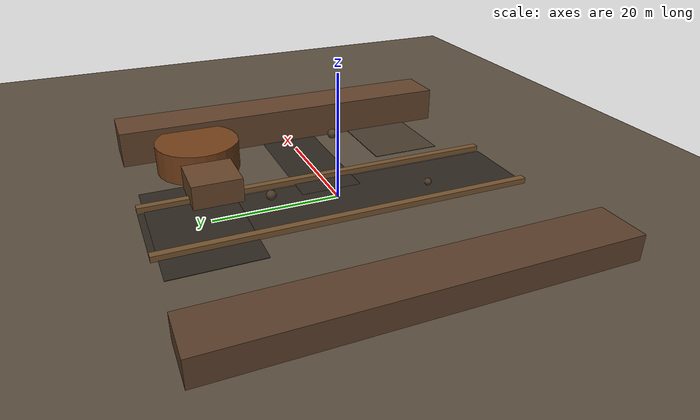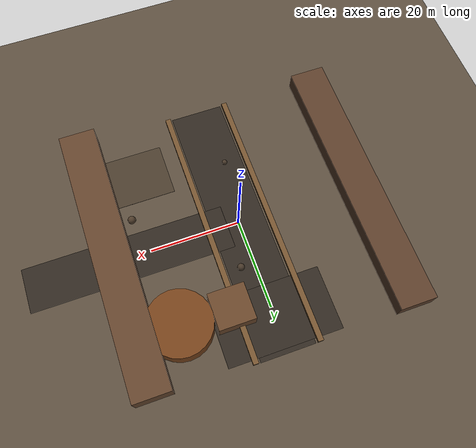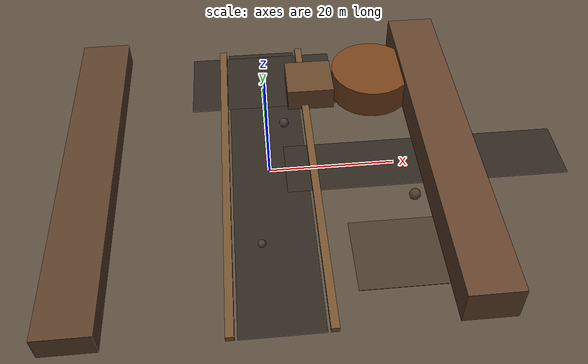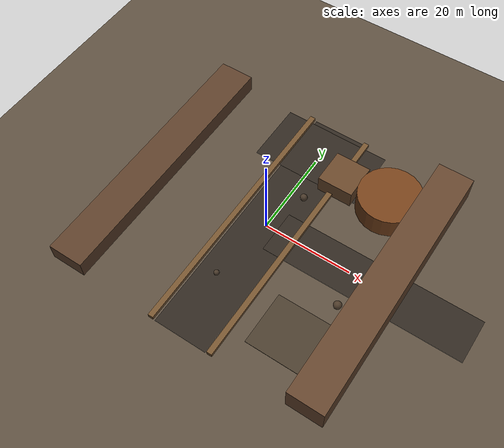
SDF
<?xml version="1.0"?>
<sdf version="1.8">
  <world name="mine_world">

    <!-- Core Gazebo systems -->
    <plugin filename="libignition-gazebo-physics-system.so"
            name="ignition::gazebo::systems::Physics"/>
    <plugin filename="libignition-gazebo-user-commands-system.so"
            name="ignition::gazebo::systems::UserCommands"/>
    <plugin filename="libignition-gazebo-scene-broadcaster-system.so"
            name="ignition::gazebo::systems::SceneBroadcaster"/>
    <plugin filename="libignition-gazebo-sensors-system.so"
            name="ignition::gazebo::systems::Sensors">
      <render_engine>ogre2</render_engine>
    </plugin>

    <!-- IMU system -->
    <plugin filename="libignition-gazebo-imu-system.so"
        name="ignition::gazebo::systems::Imu"/>

    <gravity>0 0 -9.81</gravity>

    <!-- World appearance -->
    <scene>
      <ambient>0.35 0.35 0.35 1</ambient>
      <background>0.12 0.12 0.12 1</background>
      <shadows>true</shadows>
    </scene>

    <!-- Sun -->
    <light name="sun" type="directional">
      <cast_shadows>true</cast_shadows>
      <pose>0 0 30 0.3 0.2 0</pose>
      <diffuse>1 1 1 1</diffuse>
      <specular>0.3 0.3 0.3 1</specular>
      <direction>-0.4 0.3 -1</direction>
    </light>

    <!-- BASE GROUND                                           -->

    <model name="ground">
      <static>true</static>
      <link name="ground_link">
        <collision name="ground_collision">
          <geometry>
            <plane>
              <normal>0 0 1</normal>
              <size>120 120</size>
            </plane>
          </geometry>
        </collision>
        <visual name="ground_visual">
          <geometry>
            <plane>
              <normal>0 0 1</normal>
              <size>120 120</size>
            </plane>
          </geometry>
          <material>
            <ambient>0.25 0.22 0.18 1</ambient>
            <diffuse>0.35 0.30 0.24 1</diffuse>
          </material>
        </visual>
      </link>
    </model>

    <!-- MAIN HAUL ROAD                                        -->

    <model name="road_main">
      <static>true</static>
      <pose>0 0 0.02 0 0 0</pose>
      <link name="link">
        <collision name="collision">
          <geometry>
            <box>
              <size>12 60 0.08</size>
            </box>
          </geometry>
        </collision>
        <visual name="visual">
          <geometry>
            <box>
              <size>12 60 0.08</size>
            </box>
          </geometry>
          <material>
            <ambient>0.12 0.10 0.08 1</ambient>
            <diffuse>0.18 0.15 0.12 1</diffuse>
          </material>
        </visual>
      </link>
    </model>

    <!-- SIDE ROAD                                             -->

    <model name="road_side">
      <static>true</static>
      <pose>25 0 0.025 0 0 1.5708</pose>
      <link name="link">
        <collision name="collision">
          <geometry>
            <box>
              <size>10 45 0.08</size>
            </box>
          </geometry>
        </collision>
        <visual name="visual">
          <geometry>
            <box>
              <size>10 45 0.08</size>
            </box>
          </geometry>
          <material>
            <ambient>0.12 0.10 0.08 1</ambient>
            <diffuse>0.18 0.15 0.12 1</diffuse>
          </material>
        </visual>
      </link>
    </model>

    <!-- INTERSECTION ROAD                                     -->

    <model name="road_cross">
      <static>true</static>
      <pose>0 22 0.03 0 0 1.5708</pose>
      <link name="link">
        <collision name="collision">
          <geometry>
            <box>
              <size>14 25 0.08</size>
            </box>
          </geometry>
        </collision>
        <visual name="visual">
          <geometry>
            <box>
              <size>14 25 0.08</size>
            </box>
          </geometry>
          <material>
            <ambient>0.12 0.10 0.08 1</ambient>
            <diffuse>0.18 0.15 0.12 1</diffuse>
          </material>
        </visual>
      </link>
    </model>

    <!-- ROAD BERM LEFT                                        -->

    <model name="berm_left">
      <static>true</static>
      <pose>-7 0 0.45 0 0 0</pose>
      <link name="link">
        <collision name="collision">
          <geometry>
            <box>
              <size>1.2 60 0.9</size>
            </box>
          </geometry>
        </collision>
        <visual name="visual">
          <geometry>
            <box>
              <size>1.2 60 0.9</size>
            </box>
          </geometry>
          <material>
            <ambient>0.38 0.28 0.16 1</ambient>
            <diffuse>0.45 0.32 0.18 1</diffuse>
          </material>
        </visual>
      </link>
    </model>

    <!-- ROAD BERM RIGHT                                       -->

    <model name="berm_right">
      <static>true</static>
      <pose>7 0 0.45 0 0 0</pose>
      <link name="link">
        <collision name="collision">
          <geometry>
            <box>
              <size>1.2 60 0.9</size>
            </box>
          </geometry>
        </collision>
        <visual name="visual">
          <geometry>
            <box>
              <size>1.2 60 0.9</size>
            </box>
          </geometry>
          <material>
            <ambient>0.38 0.28 0.16 1</ambient>
            <diffuse>0.45 0.32 0.18 1</diffuse>
          </material>
        </visual>
      </link>
    </model>

    <!-- MINE WALL / BENCH 1                                   -->

    <model name="bench_1">
      <static>true</static>
      <pose>-28 0 2 0 0 0</pose>
      <link name="link">
        <collision name="collision">
          <geometry>
            <box>
              <size>8 60 4</size>
            </box>
          </geometry>
        </collision>
        <visual name="visual">
          <geometry>
            <box>
              <size>8 60 4</size>
            </box>
          </geometry>
          <material>
            <ambient>0.28 0.20 0.14 1</ambient>
            <diffuse>0.35 0.24 0.16 1</diffuse>
          </material>
        </visual>
      </link>
    </model>

    <!-- MINE WALL / BENCH 2                                   -->

    <model name="bench_2">
      <static>true</static>
      <pose>28 0 3 0 0 0</pose>
      <link name="link">
        <collision name="collision">
          <geometry>
            <box>
              <size>8 60 6</size>
            </box>
          </geometry>
        </collision>
        <visual name="visual">
          <geometry>
            <box>
              <size>8 60 6</size>
            </box>
          </geometry>
          <material>
            <ambient>0.30 0.21 0.14 1</ambient>
            <diffuse>0.38 0.26 0.17 1</diffuse>
          </material>
        </visual>
      </link>
    </model>

    <!-- ORE STOCKPILE                                         -->

    <model name="ore_stockpile">
      <static>true</static>
      <pose>19 18 2.5 0 0 0</pose>
      <link name="link">
        <collision name="collision">
          <geometry>
            <cylinder>
              <radius>7</radius>
              <length>5</length>
            </cylinder>
          </geometry>
        </collision>
        <visual name="visual">
          <geometry>
            <cylinder>
              <radius>7</radius>
              <length>5</length>
            </cylinder>
          </geometry>
          <material>
            <ambient>0.32 0.18 0.08 1</ambient>
            <diffuse>0.45 0.25 0.10 1</diffuse>
          </material>
        </visual>
      </link>
    </model>

    <!-- ROCK OBSTACLES                                        -->

    <model name="rock_1">
      <static>true</static>
      <pose>3 10 0.8 0 0 0</pose>
      <link name="link">
        <collision name="collision">
          <geometry>
            <sphere><radius>0.8</radius></sphere>
          </geometry>
        </collision>
        <visual name="visual">
          <geometry>
            <sphere><radius>0.8</radius></sphere>
          </geometry>
          <material>
            <ambient>0.20 0.16 0.12 1</ambient>
            <diffuse>0.28 0.22 0.16 1</diffuse>
          </material>
        </visual>
      </link>
    </model>

    <model name="rock_2">
      <static>true</static>
      <pose>-2 -15 0.6 0 0 0</pose>
      <link name="link">
        <collision name="collision">
          <geometry>
            <sphere><radius>0.6</radius></sphere>
          </geometry>
        </collision>
        <visual name="visual">
          <geometry>
            <sphere><radius>0.6</radius></sphere>
          </geometry>
          <material>
            <ambient>0.20 0.16 0.12 1</ambient>
            <diffuse>0.28 0.22 0.16 1</diffuse>
          </material>
        </visual>
      </link>
    </model>

    <model name="rock_3">
      <static>true</static>
      <pose>22 -8 0.9 0 0 0</pose>
      <link name="link">
        <collision name="collision">
          <geometry>
            <sphere><radius>0.9</radius></sphere>
          </geometry>
        </collision>
        <visual name="visual">
          <geometry>
            <sphere><radius>0.9</radius></sphere>
          </geometry>
          <material>
            <ambient>0.22 0.17 0.12 1</ambient>
            <diffuse>0.30 0.23 0.16 1</diffuse>
          </material>
        </visual>
      </link>
    </model>

    <!-- LOADING AREA                                          -->

    <model name="loading_area">
      <static>true</static>
      <pose>18 -18 0.04 0 0 0</pose>
      <link name="link">
        <visual name="visual">
          <geometry>
            <box>
              <size>14 12 0.08</size>
            </box>
          </geometry>
          <material>
            <ambient>0.20 0.17 0.13 1</ambient>
            <diffuse>0.28 0.23 0.17 1</diffuse>
          </material>
        </visual>
      </link>
    </model>
<!-- BLIND-ZONE OBSTACLE                                   -->

    <model name="blind_zone_rock">
      <static>true</static>
      <pose>8 18 2.0 0 0 0</pose>
      <link name="link">
        <collision name="collision">
          <geometry>
            <box>
              <size>8 8 4</size>
            </box>
          </geometry>
        </collision>
        <visual name="visual">
          <geometry>
            <box>
              <size>8 8 4</size>
            </box>
          </geometry>
          <material>
            <ambient>0.30 0.20 0.12 1</ambient>
            <diffuse>0.40 0.27 0.16 1</diffuse>
          </material>
        </visual>
      </link>
    </model>

  </world>
</sdf>
